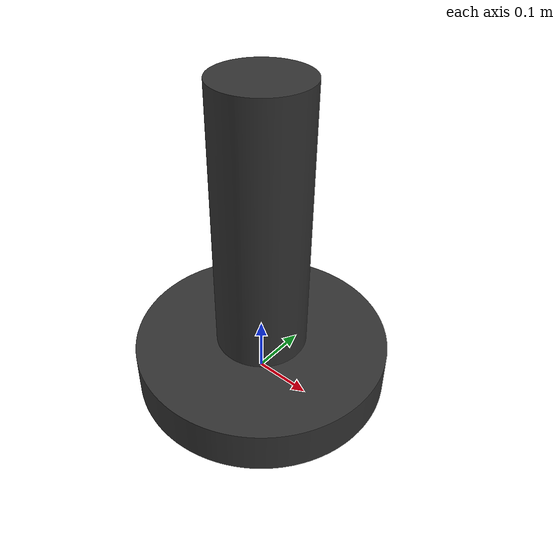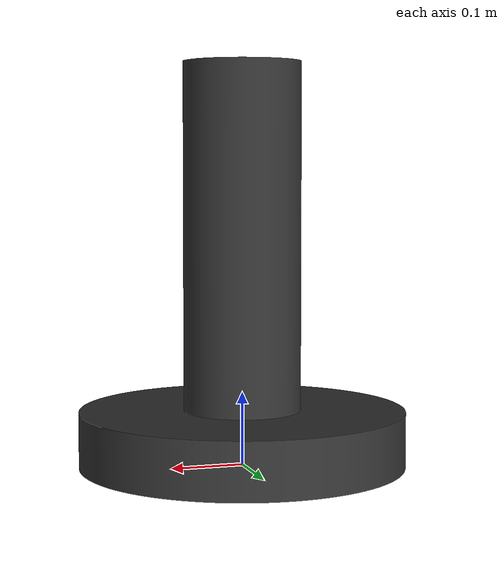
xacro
<?xml version="1.0"?>

<!-- UNIMATE Puma 560 Manipulator -->
<robot name="puma560" xmlns:xacro="http://www.ros.org/wiki/xacro">

  <!-- Constants for robot dimensions -->
  <xacro:property name="Pi" value="3.1415926535897931"/>

  <!-- Geometric parameters for base-->
  <xacro:property name="height_base" value="${.54864}"/>

  <xacro:property name="mass" value="${0}"/>
  <xacro:property name="com" value="${[0,0,0,0,0,0]}"/>
  <xacro:property name="inertia_diagonals" value="${[0,0,0]}"/>
  <xacro:property name="inertia_off_diagonal" value="${[0,0,0]}"/>

  <xacro:macro name="general_inertia_defition" params="mass com inertia_diagonal inertia_off_diagonal">
    <inertial>
      <origin xyz="${com[1]} ${com[2]} ${com[3]}" rpy="${com[4]} ${com[5]} ${com[6]}"/>
      <mass value="${mass}"/>
      <inertia
        ixx="${inertia_diagonal[1]}"  ixy="${inertia_off_diagonal[2]}" ixz="${inertia_off_diagonal[2]}"
        iyy="${inertia_diagonal[2]}"  iyz="${inertia_off_diagonal[3]}"
        izz="${inertia_diagonal[3]}"
        />
      </inertial>
    </xacro:macro>

    <!-- Import Rviz colors -->
    <xacro:include filename="$(find puma560_description)/urdf/materials.xacro" />

    <!-- Import all Gazebo-customization elements, including Gazebo colors -->
    <xacro:include filename="$(find puma560_description)/urdf/puma560.gazebo" />

    <!-- Link definitions -->
    <link name="world"/>

    <joint name="world" type="fixed">
      <parent link="world"/>
      <child link="puma_base"/>
      <origin xyz="0 0 ${height_base}" rpy="0 0 0" />
      <axis xyz="0 0 1" />
    </joint>

    <link name="puma_base">

      <visual>
        <origin xyz="0 0 0" rpy="0 0 0" />
        <geometry>
          <mesh filename="package://puma560_description/meshes/puma_base.stl" />
        </geometry>
        <material name="grey"/>
      </visual>

      <collision>
        <origin xyz="0 0 0" rpy="0 0 0" />
        <geometry>
          <mesh filename="package://puma560_description/meshes/puma_base_collision.stl" />
        </geometry>
      </collision>
</link>

    <!-- Joint definitions -->

</robot>

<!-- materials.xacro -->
<robot>

	<material name="black">
		<color rgba="0.0 0.0 0.0 1.0"/>
	</material>

	<material name="blue">
		<color rgba="0.0 0.0 0.8 1.0"/>
	</material>

	<material name="green">
		<color rgba="0.0 0.8 0.0 1.0"/>
	</material>

	<material name="grey">
		<color rgba="0.2 0.2 0.2 1.0"/>
	</material>

	<material name="red">
		<color rgba="0.8 0.0 0.0 1.0"/>
	</material>

	<material name="red_transparent">
		<color rgba="0.8 0.0 0.0 0.5"/>
	</material>

	<material name="white">
		<color rgba="1.0 1.0 1.0 1.0"/>
	</material>

	<material name="orange">
		<color rgba="${255/255} ${108/255} ${10/255} 1.0"/>
	</material>

	<material name="brown">
		<color rgba="${222/255} ${207/255} ${195/255} 1.0"/>
	</material>

	<material name="metal">
		<color rgba="${211/255} ${211/255} ${211/255} 1" />
	</material>

	<material name="wood">
		<color rgba="${205/255} ${133/255} ${63/255} 1" />
	</material>

</robot>
